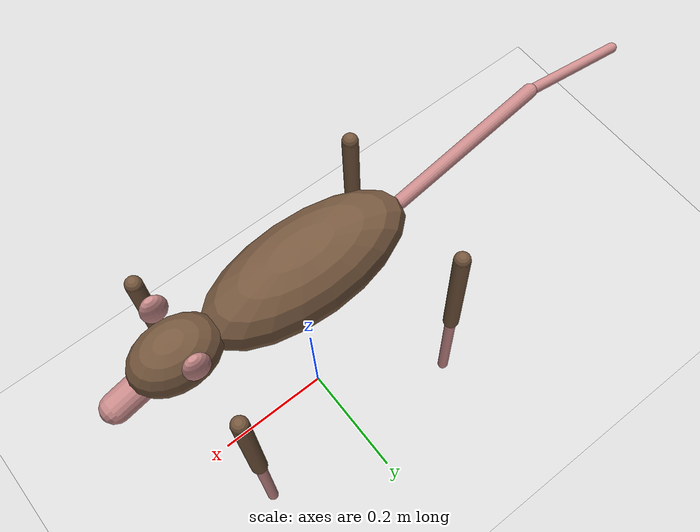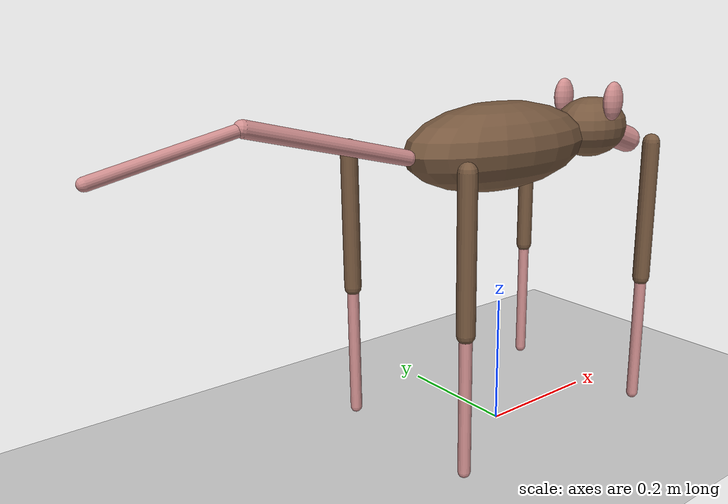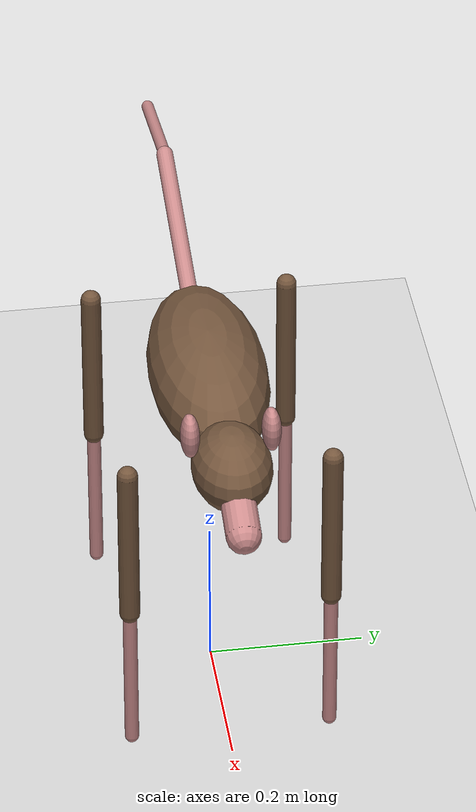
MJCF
<mujoco model="rodent (go1-based, 12-DoF)">
  <compiler angle="radian" autolimits="true"/>

  <option iterations="1" ls_iterations="5" timestep="0.004" integrator="Euler">
    <flag eulerdamp="disable"/>
  </option>

  <default>
    <default class="go1">
      <geom condim="1" contype="0" conaffinity="0"/>
      <joint axis="0 1 0" armature="0.005" damping="0.5"/>
      <position forcerange="-23.7 23.7" inheritrange="1" kp="35"/>
      <default class="abduction">
        <joint axis="1 0 0" range="-0.863 0.863" frictionloss="0.3"/>
      </default>
      <default class="hip">
        <joint range="-0.686 4.501" frictionloss="0.3"/>
      </default>
      <default class="knee">
        <joint range="-2.818 -0.888" frictionloss="1.0"/>
        <position forcerange="-35.55 35.55"/>
      </default>
      <!-- rodent visual primitives (render-only: contype/conaffinity 0) -->
      <default class="ratvis">
        <geom type="capsule" contype="0" conaffinity="0" group="2" material="fur"/>
      </default>
      <default class="collision">
        <geom group="3" type="capsule"/>
        <default class="hip_left1"><geom size="0.046 0.02" pos="0 0.045 0" quat="1 1 0 0" type="cylinder"/></default>
        <default class="hip_left2"><geom size="0.031 0.02" pos="0 0.065 0" quat="1 1 0 0" type="cylinder"/></default>
        <default class="hip_left3"><geom size="0.046 0.02" quat="1 1 0 0" type="cylinder"/></default>
        <default class="hip_right1"><geom size="0.046 0.02" pos="0 -0.045 0" quat="1 1 0 0" type="cylinder"/></default>
        <default class="hip_right2"><geom size="0.031 0.02" pos="0 -0.065 0" quat="1 1 0 0" type="cylinder"/></default>
        <default class="hip_right3"><geom size="0.046 0.02" quat="1 1 0 0" type="cylinder"/></default>
        <default class="thigh1"><geom size="0.015" fromto="-0.02 0 0 -0.02 0 -0.16"/></default>
        <default class="thigh2"><geom size="0.015" fromto="0 0 0 -0.02 0 -0.1"/></default>
        <default class="thigh3"><geom size="0.015" fromto="-0.02 0 -0.16 0 0 -0.2"/></default>
        <default class="calf1"><geom size="0.01" fromto="0 0 0 0.02 0 -0.13"/></default>
        <default class="calf2"><geom size="0.01" fromto="0.02 0 -0.13 0 0 -0.2"/></default>
        <default class="foot">
          <geom type="sphere" size="0.023" pos="0 0 -0.213" solimp="0.9 .95 0.023" contype="0" conaffinity="1"/>
        </default>
      </default>
    </default>
  </default>

  <asset>
    <material name="fur" rgba="0.46 0.34 0.24 1"/>
    <material name="skin" rgba="0.8 0.55 0.55 1"/>
    <texture type="skybox" builtin="gradient" rgb1="0.7 0.8 0.9" rgb2="0.9 0.95 1" width="512" height="512"/>
    <texture type="2d" name="groundplane" builtin="checker" mark="edge" rgb1="0.9 0.9 0.9" rgb2="0.75 0.75 0.75"
      markrgb="0.3 0.3 0.3" width="300" height="300"/>
    <material name="groundplane" texture="groundplane" texuniform="true" texrepeat="5 5" reflectance="0.1"/>
  </asset>

  <statistic center="0 0 0.1" extent="0.8" meansize="0.04"/>

  <visual>
    <headlight diffuse=".8 .8 .8" ambient=".3 .3 .3" specular="0.5 0.5 0.5"/>
    <global azimuth="120" elevation="-20"/>
    <quality shadowsize="4096"/>
  </visual>

  <worldbody>
    <geom name="floor" size="0 0 0.01" type="plane" material="groundplane" contype="1" conaffinity="0"
      priority="1" friction="0.6" condim="3"/>
    <light name="spotlight" mode="targetbodycom" target="trunk" pos="3 0 4"/>
    <body name="trunk" pos="0 0 0.445" childclass="go1">
      <camera name="track" pos="0.846 -1.3 0.316" xyaxes="0.866 0.500 0.000 -0.171 0.296 0.940" mode="trackcom"/>
      <camera name="side" pos="0 -1 .3" xyaxes="1 0 0 0 1 2" mode="trackcom"/>
      <site name="head" pos="0.3 0 0" rgba="1 0 0 1" size="0.02" group="5"/>
      <inertial pos="0.0223 0.002 -0.0005" quat="-0.00342088 0.705204 0.000106698 0.708996" mass="5.204"
        diaginertia="0.0716565 0.0630105 0.0168101"/>
      <freejoint/>
      <!-- rodent visual shell: elongated body + head + snout + ears + tail (render-only) -->
      <geom class="ratvis" type="ellipsoid" size="0.17 0.075 0.065" pos="-0.01 0 0"/>
      <geom class="ratvis" type="ellipsoid" size="0.07 0.05 0.048" pos="0.2 0 0.01"/>
      <geom class="ratvis" type="capsule" fromto="0.24 0 0.0 0.30 0 -0.02" size="0.022" material="skin"/>
      <geom class="ratvis" type="ellipsoid" size="0.02 0.012 0.03" pos="0.19 0.05 0.055" material="skin"/>
      <geom class="ratvis" type="ellipsoid" size="0.02 0.012 0.03" pos="0.19 -0.05 0.055" material="skin"/>
      <geom class="ratvis" type="capsule" fromto="-0.18 0 0.0 -0.42 0 0.06" size="0.011" material="skin"/>
      <geom class="ratvis" type="capsule" fromto="-0.42 0 0.06 -0.6 0 0.02" size="0.008" material="skin"/>
      <!-- Go1 trunk collision (verbatim) -->
      <geom class="collision" size="0.125 0.04 0.057" type="box"/>
      <geom class="collision" quat="1 0 1 0" pos="0 -0.04 0" size="0.058 0.125" type="cylinder"/>
      <geom class="collision" quat="1 0 1 0" pos="0 +0.04 0" size="0.058 0.125" type="cylinder"/>
      <site name="imu" pos="-0.01592 -0.06659 -0.00617" group="5"/>

      <body name="FR_hip" pos="0.1881 -0.04675 0">
        <inertial pos="-0.0049166 0.00762615 -8.865e-05" quat="0.507341 0.514169 0.495027 0.482891" mass="0.68"
          diaginertia="0.000734064 0.000468438 0.000398719"/>
        <joint class="abduction" name="FR_hip_joint"/>
        <geom class="hip_right1"/>
        <geom class="hip_right2"/>
        <body name="FR_thigh" pos="0 -0.08 0">
          <inertial pos="-0.00304722 0.019315 -0.0305004" quat="0.65243 -0.0272313 0.0775126 0.753383" mass="1.009"
            diaginertia="0.00478717 0.00460903 0.000709268"/>
          <joint class="hip" name="FR_thigh_joint"/>
          <geom class="ratvis" fromto="0 0 0 0 0 -0.213" size="0.013"/>
          <geom class="thigh1"/>
          <geom class="thigh2"/>
          <geom class="thigh3"/>
          <body name="FR_calf" pos="0 0 -0.213">
            <inertial pos="0.00429862 0.000976676 -0.146197" quat="0.691246 0.00357467 0.00511118 0.722592"
              mass="0.195862" diaginertia="0.00149767 0.00148468 3.58427e-05"/>
            <joint class="knee" name="FR_calf_joint"/>
            <geom class="ratvis" fromto="0 0 0 0 0 -0.2" size="0.009" material="skin"/>
            <geom class="calf1"/>
            <geom class="calf2"/>
            <geom name="FR" class="foot"/>
            <site name="FR" pos="0 0 -0.213" type="sphere" size="0.023" group="5"/>
          </body>
        </body>
      </body>
      <body name="FL_hip" pos="0.1881 0.04675 0">
        <inertial pos="-0.0049166 -0.00762615 -8.865e-05" quat="0.482891 0.495027 0.514169 0.507341" mass="0.68"
          diaginertia="0.000734064 0.000468438 0.000398719"/>
        <joint class="abduction" name="FL_hip_joint"/>
        <geom class="hip_left1"/>
        <geom class="hip_left2"/>
        <body name="FL_thigh" pos="0 0.08 0">
          <inertial pos="-0.00304722 -0.019315 -0.0305004" quat="0.753383 0.0775126 -0.0272313 0.65243" mass="1.009"
            diaginertia="0.00478717 0.00460903 0.000709268"/>
          <joint class="hip" name="FL_thigh_joint"/>
          <geom class="ratvis" fromto="0 0 0 0 0 -0.213" size="0.013"/>
          <geom class="thigh1"/>
          <geom class="thigh2"/>
          <geom class="thigh3"/>
          <body name="FL_calf" pos="0 0 -0.213">
            <inertial pos="0.00429862 0.000976676 -0.146197" quat="0.691246 0.00357467 0.00511118 0.722592"
              mass="0.195862" diaginertia="0.00149767 0.00148468 3.58427e-05"/>
            <joint class="knee" name="FL_calf_joint"/>
            <geom class="ratvis" fromto="0 0 0 0 0 -0.2" size="0.009" material="skin"/>
            <geom class="calf1"/>
            <geom class="calf2"/>
            <geom name="FL" class="foot"/>
            <site name="FL" pos="0 0 -0.213" type="sphere" size="0.023" group="5"/>
          </body>
        </body>
      </body>
      <body name="RR_hip" pos="-0.1881 -0.04675 0">
        <inertial pos="0.0049166 0.00762615 -8.865e-05" quat="0.495027 0.482891 0.507341 0.514169" mass="0.68"
          diaginertia="0.000734064 0.000468438 0.000398719"/>
        <joint class="abduction" name="RR_hip_joint"/>
        <geom class="hip_right1"/>
        <geom class="hip_right2"/>
        <geom class="hip_right3"/>
        <body name="RR_thigh" pos="0 -0.08 0">
          <inertial pos="-0.00304722 0.019315 -0.0305004" quat="0.65243 -0.0272313 0.0775126 0.753383" mass="1.009"
            diaginertia="0.00478717 0.00460903 0.000709268"/>
          <joint class="hip" name="RR_thigh_joint"/>
          <geom class="ratvis" fromto="0 0 0 0 0 -0.213" size="0.013"/>
          <geom class="thigh1"/>
          <geom class="thigh2"/>
          <geom class="thigh3"/>
          <body name="RR_calf" pos="0 0 -0.213">
            <inertial pos="0.00429862 0.000976676 -0.146197" quat="0.691246 0.00357467 0.00511118 0.722592"
              mass="0.195862" diaginertia="0.00149767 0.00148468 3.58427e-05"/>
            <joint class="knee" name="RR_calf_joint"/>
            <geom class="ratvis" fromto="0 0 0 0 0 -0.2" size="0.009" material="skin"/>
            <geom class="calf1"/>
            <geom class="calf2"/>
            <geom name="RR" class="foot"/>
            <site name="RR" pos="0 0 -0.213" type="sphere" size="0.023" group="5"/>
          </body>
        </body>
      </body>
      <body name="RL_hip" pos="-0.1881 0.04675 0">
        <inertial pos="0.0049166 -0.00762615 -8.865e-05" quat="0.514169 0.507341 0.482891 0.495027" mass="0.68"
          diaginertia="0.000734064 0.000468438 0.000398719"/>
        <joint class="abduction" name="RL_hip_joint"/>
        <geom class="hip_left1"/>
        <geom class="hip_left2"/>
        <geom class="hip_left3"/>
        <body name="RL_thigh" pos="0 0.08 0">
          <inertial pos="-0.00304722 -0.019315 -0.0305004" quat="0.753383 0.0775126 -0.0272313 0.65243" mass="1.009"
            diaginertia="0.00478717 0.00460903 0.000709268"/>
          <joint class="hip" name="RL_thigh_joint"/>
          <geom class="ratvis" fromto="0 0 0 0 0 -0.213" size="0.013"/>
          <geom class="thigh1"/>
          <geom class="thigh2"/>
          <geom class="thigh3"/>
          <body name="RL_calf" pos="0 0 -0.213">
            <inertial pos="0.00429862 0.000976676 -0.146197" quat="0.691246 0.00357467 0.00511118 0.722592"
              mass="0.195862" diaginertia="0.00149767 0.00148468 3.58427e-05"/>
            <joint class="knee" name="RL_calf_joint"/>
            <geom class="ratvis" fromto="0 0 0 0 0 -0.2" size="0.009" material="skin"/>
            <geom class="calf1"/>
            <geom class="calf2"/>
            <geom name="RL" class="foot"/>
            <site name="RL" pos="0 0 -0.213" type="sphere" size="0.023" group="5"/>
          </body>
        </body>
      </body>
    </body>
  </worldbody>

  <actuator>
    <position class="abduction" name="FR_hip" joint="FR_hip_joint"/>
    <position class="hip" name="FR_thigh" joint="FR_thigh_joint"/>
    <position class="knee" name="FR_calf" joint="FR_calf_joint"/>
    <position class="abduction" name="FL_hip" joint="FL_hip_joint"/>
    <position class="hip" name="FL_thigh" joint="FL_thigh_joint"/>
    <position class="knee" name="FL_calf" joint="FL_calf_joint"/>
    <position class="abduction" name="RR_hip" joint="RR_hip_joint"/>
    <position class="hip" name="RR_thigh" joint="RR_thigh_joint"/>
    <position class="knee" name="RR_calf" joint="RR_calf_joint"/>
    <position class="abduction" name="RL_hip" joint="RL_hip_joint"/>
    <position class="hip" name="RL_thigh" joint="RL_thigh_joint"/>
    <position class="knee" name="RL_calf" joint="RL_calf_joint"/>
  </actuator>

  <sensor>
    <gyro site="imu" name="gyro"/>
    <velocimeter site="imu" name="local_linvel"/>
    <accelerometer site="imu" name="accelerometer"/>
    <framepos objtype="site" objname="imu" name="position"/>
    <framezaxis objtype="site" objname="imu" name="upvector"/>
    <framexaxis objtype="site" objname="imu" name="forwardvector"/>
    <framelinvel objtype="site" objname="imu" name="global_linvel"/>
    <frameangvel objtype="site" objname="imu" name="global_angvel"/>
    <framequat objtype="site" objname="imu" name="orientation"/>
    <framelinvel objtype="site" objname="FR" name="FR_global_linvel"/>
    <framelinvel objtype="site" objname="FL" name="FL_global_linvel"/>
    <framelinvel objtype="site" objname="RR" name="RR_global_linvel"/>
    <framelinvel objtype="site" objname="RL" name="RL_global_linvel"/>
    <framepos objtype="site" objname="FR" name="FR_pos" reftype="site" refname="imu"/>
    <framepos objtype="site" objname="FL" name="FL_pos" reftype="site" refname="imu"/>
    <framepos objtype="site" objname="RR" name="RR_pos" reftype="site" refname="imu"/>
    <framepos objtype="site" objname="RL" name="RL_pos" reftype="site" refname="imu"/>
    <contact name="FR_floor_found" geom1="FR" geom2="floor" reduce="mindist" num="1" data="found"/>
    <contact name="FL_floor_found" geom1="FL" geom2="floor" reduce="mindist" num="1" data="found"/>
    <contact name="RL_floor_found" geom1="RL" geom2="floor" reduce="mindist" num="1" data="found"/>
    <contact name="RR_floor_found" geom1="RR" geom2="floor" reduce="mindist" num="1" data="found"/>
  </sensor>

  <keyframe>
    <key name="home" qpos="0 0 0.278 1 0 0 0 0.1 0.9 -1.8 -0.1 0.9 -1.8 0.1 0.9 -1.8 -0.1 0.9 -1.8"
      ctrl="0.1 0.9 -1.8 -0.1 0.9 -1.8 0.1 0.9 -1.8 -0.1 0.9 -1.8"/>
    <key name="home_higher" qpos="0 0 0.31 1 0 0 0 0 0.82 -1.63 0 0.82 -1.63 0 0.82 -1.63 0 0.82 -1.63"
      ctrl="0 0.82 -1.63 0 0.82 -1.63 0 0.82 -1.63 0 0.82 -1.63"/>
  </keyframe>
</mujoco>
